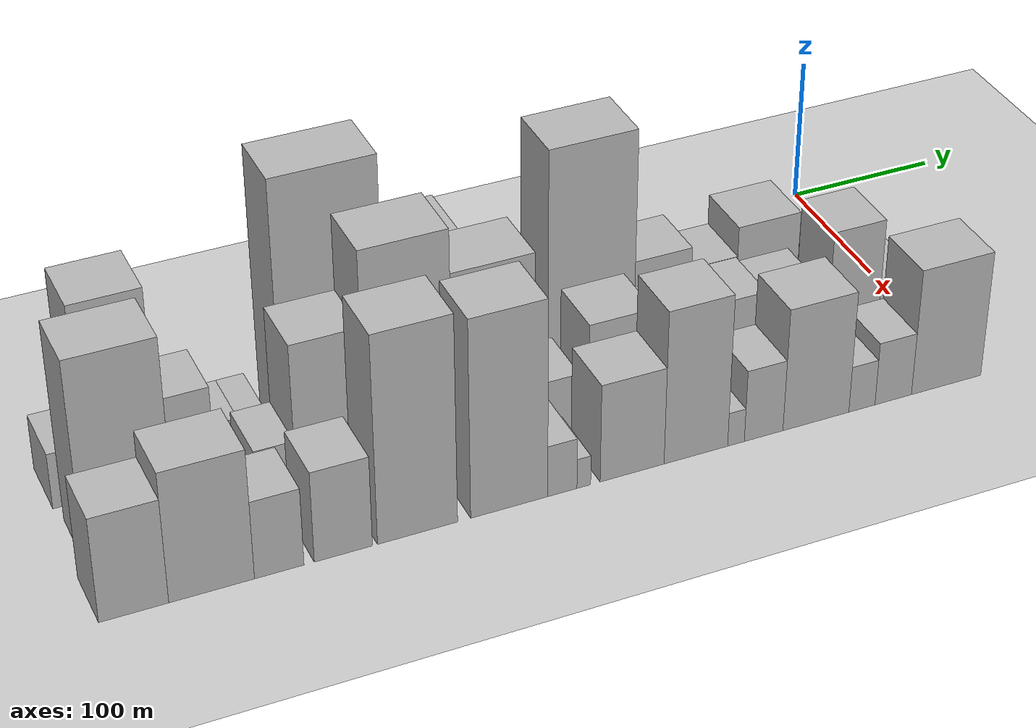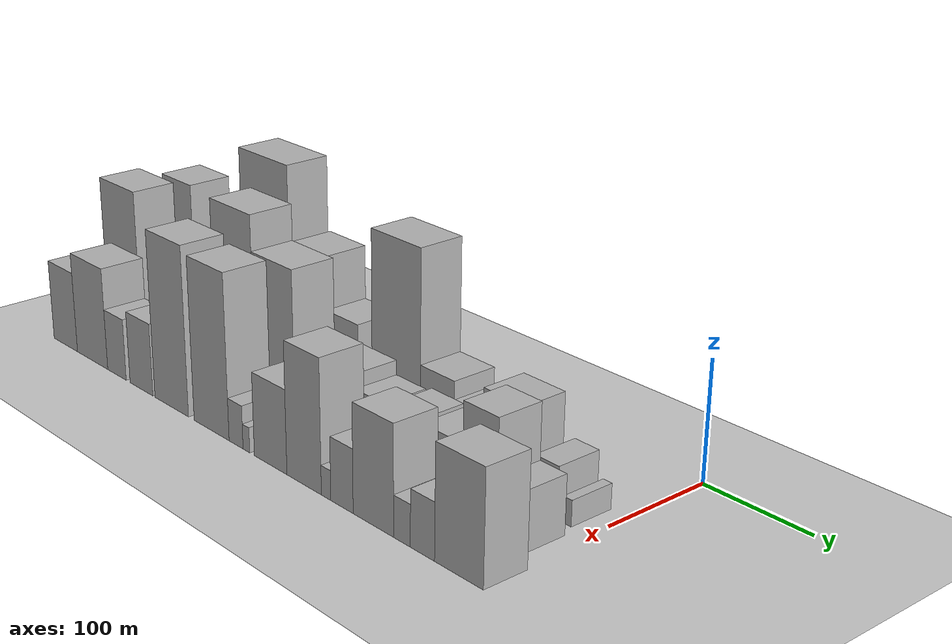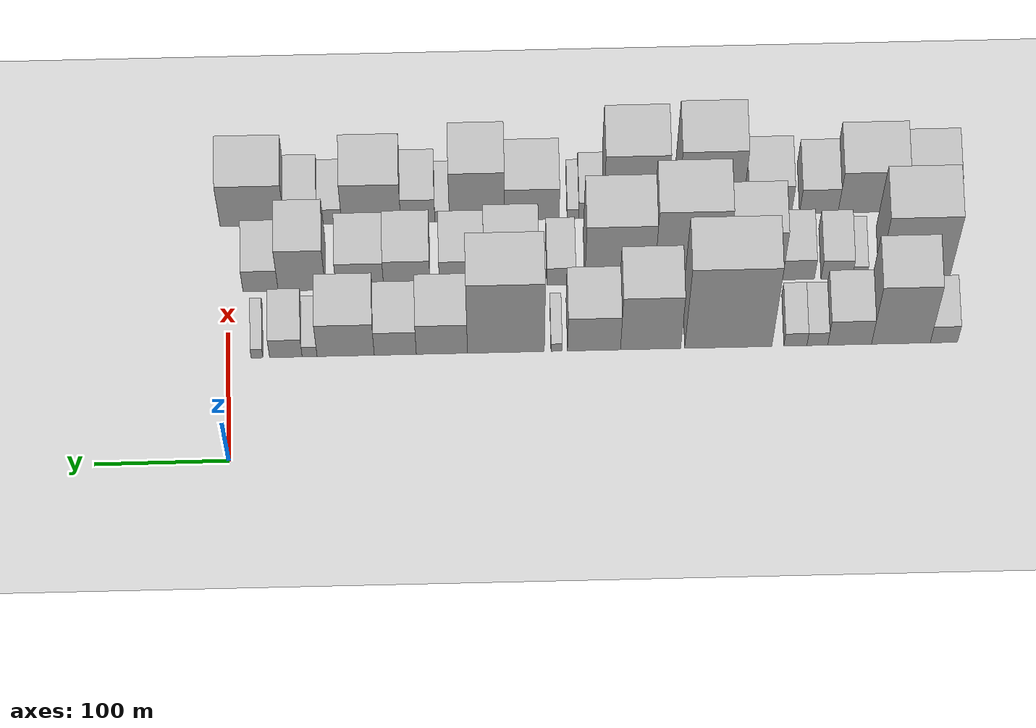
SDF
<sdf version="1.6">
 <world name="default">
  <include><name>ground_plane_1</name><uri>model://HANNAS_ground_plane</uri></include>
  <model name="building_1">
   <static>1</static>
   <pose>100.0000 -533.8357 0 0.000000 0.000000 0.000000</pose>
   <link name="link">
    <pose>0 0 19.50 0 0 0</pose>
    <collision name="collision"><geometry><box><size>40.0000 20.3287 39.0000</size></box></geometry></collision>
    <visual name="visual">
     <cast_shadows>0</cast_shadows>
     <geometry><box><size>40.0000 20.3287 39.0000</size></box></geometry>
     <material>
      <script>
       <uri>model://HANNAS_wall/materials/scripts</uri>
       <uri>model://HANNAS_wall/materials/textures</uri>
       <name>vrc/HANNAS_wall</name>
      </script>
     </material>
    </visual>
   </link>
  </model>
  <model name="building_2">
   <static>1</static>
   <pose>100.0000 -501.7357 0 0.000000 0.000000 0.000000</pose>
   <link name="link">
    <pose>0 0 67.50 0 0 0</pose>
    <collision name="collision"><geometry><box><size>40.0000 43.8712 135.0000</size></box></geometry></collision>
    <visual name="visual">
     <cast_shadows>0</cast_shadows>
     <geometry><box><size>40.0000 43.8712 135.0000</size></box></geometry>
     <material>
      <script>
       <uri>model://HANNAS_wall/materials/scripts</uri>
       <uri>model://HANNAS_wall/materials/textures</uri>
       <name>vrc/HANNAS_wall</name>
      </script>
     </material>
    </visual>
   </link>
  </model>
  <model name="building_3">
   <static>1</static>
   <pose>100.0000 -463.4330 0 0.000000 0.000000 0.000000</pose>
   <link name="link">
    <pose>0 0 28.50 0 0 0</pose>
    <collision name="collision"><geometry><box><size>40.0000 32.7341 57.0000</size></box></geometry></collision>
    <visual name="visual">
     <cast_shadows>0</cast_shadows>
     <geometry><box><size>40.0000 32.7341 57.0000</size></box></geometry>
     <material>
      <script>
       <uri>model://HANNAS_wall/materials/scripts</uri>
       <uri>model://HANNAS_wall/materials/textures</uri>
       <name>vrc/HANNAS_wall</name>
      </script>
     </material>
    </visual>
   </link>
  </model>
  <model name="building_4">
   <static>1</static>
   <pose>100.0000 -439.2820 0 0.000000 0.000000 0.000000</pose>
   <link name="link">
    <pose>0 0 15.00 0 0 0</pose>
    <collision name="collision"><geometry><box><size>40.0000 15.5680 30.0000</size></box></geometry></collision>
    <visual name="visual">
     <cast_shadows>0</cast_shadows>
     <geometry><box><size>40.0000 15.5680 30.0000</size></box></geometry>
     <material>
      <script>
       <uri>model://HANNAS_wall/materials/scripts</uri>
       <uri>model://HANNAS_wall/materials/textures</uri>
       <name>vrc/HANNAS_wall</name>
      </script>
     </material>
    </visual>
   </link>
  </model>
  <model name="building_5">
   <static>1</static>
   <pose>100.0000 -422.9092 0 0.000000 0.000000 0.000000</pose>
   <link name="link">
    <pose>0 0 15.00 0 0 0</pose>
    <collision name="collision"><geometry><box><size>40.0000 17.1775 30.0000</size></box></geometry></collision>
    <visual name="visual">
     <cast_shadows>0</cast_shadows>
     <geometry><box><size>40.0000 17.1775 30.0000</size></box></geometry>
     <material>
      <script>
       <uri>model://HANNAS_wall/materials/scripts</uri>
       <uri>model://HANNAS_wall/materials/textures</uri>
       <name>vrc/HANNAS_wall</name>
      </script>
     </material>
    </visual>
   </link>
  </model>
  <model name="building_6">
   <static>1</static>
   <pose>100.0000 -372.7456 0 0.000000 0.000000 0.000000</pose>
   <link name="link">
    <pose>0 0 93.00 0 0 0</pose>
    <collision name="collision"><geometry><box><size>40.0000 65.1498 186.0000</size></box></geometry></collision>
    <visual name="visual">
     <cast_shadows>0</cast_shadows>
     <geometry><box><size>40.0000 65.1498 186.0000</size></box></geometry>
     <material>
      <script>
       <uri>model://HANNAS_wall/materials/scripts</uri>
       <uri>model://HANNAS_wall/materials/textures</uri>
       <name>vrc/HANNAS_wall</name>
      </script>
     </material>
    </visual>
   </link>
  </model>
  <model name="building_7">
   <static>1</static>
   <pose>100.0000 -314.7158 0 0.000000 0.000000 0.000000</pose>
   <link name="link">
    <pose>0 0 61.50 0 0 0</pose>
    <collision name="collision"><geometry><box><size>40.0000 44.9099 123.0000</size></box></geometry></collision>
    <visual name="visual">
     <cast_shadows>0</cast_shadows>
     <geometry><box><size>40.0000 44.9099 123.0000</size></box></geometry>
     <material>
      <script>
       <uri>model://HANNAS_wall/materials/scripts</uri>
       <uri>model://HANNAS_wall/materials/textures</uri>
       <name>vrc/HANNAS_wall</name>
      </script>
     </material>
    </visual>
   </link>
  </model>
  <model name="building_8">
   <static>1</static>
   <pose>100.0000 -272.4738 0 0.000000 0.000000 0.000000</pose>
   <link name="link">
    <pose>0 0 39.00 0 0 0</pose>
    <collision name="collision"><geometry><box><size>40.0000 39.5740 78.0000</size></box></geometry></collision>
    <visual name="visual">
     <cast_shadows>0</cast_shadows>
     <geometry><box><size>40.0000 39.5740 78.0000</size></box></geometry>
     <material>
      <script>
       <uri>model://HANNAS_wall/materials/scripts</uri>
       <uri>model://HANNAS_wall/materials/textures</uri>
       <name>vrc/HANNAS_wall</name>
      </script>
     </material>
    </visual>
   </link>
  </model>
  <model name="building_9">
   <static>1</static>
   <pose>100.0000 -244.5368 0 0.000000 0.000000 0.000000</pose>
   <link name="link">
    <pose>0 0 9.00 0 0 0</pose>
    <collision name="collision"><geometry><box><size>40.0000 8.2999 18.0000</size></box></geometry></collision>
    <visual name="visual">
     <cast_shadows>0</cast_shadows>
     <geometry><box><size>40.0000 8.2999 18.0000</size></box></geometry>
     <material>
      <script>
       <uri>model://HANNAS_wall/materials/scripts</uri>
       <uri>model://HANNAS_wall/materials/textures</uri>
       <name>vrc/HANNAS_wall</name>
      </script>
     </material>
    </visual>
   </link>
  </model>
  <model name="building_10">
   <static>1</static>
   <pose>100.0000 -206.7228 0 0.000000 0.000000 0.000000</pose>
   <link name="link">
    <pose>0 0 81.00 0 0 0</pose>
    <collision name="collision"><geometry><box><size>40.0000 57.3281 162.0000</size></box></geometry></collision>
    <visual name="visual">
     <cast_shadows>0</cast_shadows>
     <geometry><box><size>40.0000 57.3281 162.0000</size></box></geometry>
     <material>
      <script>
       <uri>model://HANNAS_wall/materials/scripts</uri>
       <uri>model://HANNAS_wall/materials/textures</uri>
       <name>vrc/HANNAS_wall</name>
      </script>
     </material>
    </visual>
   </link>
  </model>
  <model name="building_11">
   <static>1</static>
   <pose>100.0000 -158.9652 0 0.000000 0.000000 0.000000</pose>
   <link name="link">
    <pose>0 0 34.50 0 0 0</pose>
    <collision name="collision"><geometry><box><size>40.0000 38.1870 69.0000</size></box></geometry></collision>
    <visual name="visual">
     <cast_shadows>0</cast_shadows>
     <geometry><box><size>40.0000 38.1870 69.0000</size></box></geometry>
     <material>
      <script>
       <uri>model://HANNAS_wall/materials/scripts</uri>
       <uri>model://HANNAS_wall/materials/textures</uri>
       <name>vrc/HANNAS_wall</name>
      </script>
     </material>
    </visual>
   </link>
  </model>
  <model name="building_12">
   <static>1</static>
   <pose>100.0000 -124.1919 0 0.000000 0.000000 0.000000</pose>
   <link name="link">
    <pose>0 0 27.00 0 0 0</pose>
    <collision name="collision"><geometry><box><size>40.0000 31.3597 54.0000</size></box></geometry></collision>
    <visual name="visual">
     <cast_shadows>0</cast_shadows>
     <geometry><box><size>40.0000 31.3597 54.0000</size></box></geometry>
     <material>
      <script>
       <uri>model://HANNAS_wall/materials/scripts</uri>
       <uri>model://HANNAS_wall/materials/textures</uri>
       <name>vrc/HANNAS_wall</name>
      </script>
     </material>
    </visual>
   </link>
  </model>
  <model name="building_13">
   <static>1</static>
   <pose>100.0000 -87.1841 0 0.000000 0.000000 0.000000</pose>
   <link name="link">
    <pose>0 0 37.50 0 0 0</pose>
    <collision name="collision"><geometry><box><size>40.0000 42.6557 75.0000</size></box></geometry></collision>
    <visual name="visual">
     <cast_shadows>0</cast_shadows>
     <geometry><box><size>40.0000 42.6557 75.0000</size></box></geometry>
     <material>
      <script>
       <uri>model://HANNAS_wall/materials/scripts</uri>
       <uri>model://HANNAS_wall/materials/textures</uri>
       <name>vrc/HANNAS_wall</name>
      </script>
     </material>
    </visual>
   </link>
  </model>
  <model name="building_14">
   <static>1</static>
   <pose>100.0000 -60.2784 0 0.000000 0.000000 0.000000</pose>
   <link name="link">
    <pose>0 0 12.00 0 0 0</pose>
    <collision name="collision"><geometry><box><size>40.0000 11.1557 24.0000</size></box></geometry></collision>
    <visual name="visual">
     <cast_shadows>0</cast_shadows>
     <geometry><box><size>40.0000 11.1557 24.0000</size></box></geometry>
     <material>
      <script>
       <uri>model://HANNAS_wall/materials/scripts</uri>
       <uri>model://HANNAS_wall/materials/textures</uri>
       <name>vrc/HANNAS_wall</name>
      </script>
     </material>
    </visual>
   </link>
  </model>
  <model name="building_15">
   <static>1</static>
   <pose>100.0000 -42.5767 0 0.000000 0.000000 0.000000</pose>
   <link name="link">
    <pose>0 0 21.00 0 0 0</pose>
    <collision name="collision"><geometry><box><size>40.0000 24.2479 42.0000</size></box></geometry></collision>
    <visual name="visual">
     <cast_shadows>0</cast_shadows>
     <geometry><box><size>40.0000 24.2479 42.0000</size></box></geometry>
     <material>
      <script>
       <uri>model://HANNAS_wall/materials/scripts</uri>
       <uri>model://HANNAS_wall/materials/textures</uri>
       <name>vrc/HANNAS_wall</name>
      </script>
     </material>
    </visual>
   </link>
  </model>
  <model name="building_16">
   <static>1</static>
   <pose>100.0000 -21.1023 0 0.000000 0.000000 0.000000</pose>
   <link name="link">
    <pose>0 0 10.50 0 0 0</pose>
    <collision name="collision"><geometry><box><size>40.0000 8.7009 21.0000</size></box></geometry></collision>
    <visual name="visual">
     <cast_shadows>0</cast_shadows>
     <geometry><box><size>40.0000 8.7009 21.0000</size></box></geometry>
     <material>
      <script>
       <uri>model://HANNAS_wall/materials/scripts</uri>
       <uri>model://HANNAS_wall/materials/textures</uri>
       <name>vrc/HANNAS_wall</name>
      </script>
     </material>
    </visual>
   </link>
  </model>
  <model name="building_32">
   <static>1</static>
   <pose>152.0000 -514.2317 0 0.000000 0.000000 0.000000</pose>
   <link name="link">
    <pose>0 0 69.00 0 0 0</pose>
    <collision name="collision"><geometry><box><size>40.0000 53.5365 138.0000</size></box></geometry></collision>
    <visual name="visual">
     <cast_shadows>0</cast_shadows>
     <geometry><box><size>40.0000 53.5365 138.0000</size></box></geometry>
     <material>
      <script>
       <uri>model://HANNAS_wall/materials/scripts</uri>
       <uri>model://HANNAS_wall/materials/textures</uri>
       <name>vrc/HANNAS_wall</name>
      </script>
     </material>
    </visual>
   </link>
  </model>
  <model name="building_33">
   <static>1</static>
   <pose>152.0000 -473.0222 0 0.000000 0.000000 0.000000</pose>
   <link name="link">
    <pose>0 0 13.50 0 0 0</pose>
    <collision name="collision"><geometry><box><size>40.0000 10.8826 27.0000</size></box></geometry></collision>
    <visual name="visual">
     <cast_shadows>0</cast_shadows>
     <geometry><box><size>40.0000 10.8826 27.0000</size></box></geometry>
     <material>
      <script>
       <uri>model://HANNAS_wall/materials/scripts</uri>
       <uri>model://HANNAS_wall/materials/textures</uri>
       <name>vrc/HANNAS_wall</name>
      </script>
     </material>
    </visual>
   </link>
  </model>
  <model name="building_34">
   <static>1</static>
   <pose>152.0000 -455.8984 0 0.000000 0.000000 0.000000</pose>
   <link name="link">
    <pose>0 0 21.00 0 0 0</pose>
    <collision name="collision"><geometry><box><size>40.0000 23.3649 42.0000</size></box></geometry></collision>
    <visual name="visual">
     <cast_shadows>0</cast_shadows>
     <geometry><box><size>40.0000 23.3649 42.0000</size></box></geometry>
     <material>
      <script>
       <uri>model://HANNAS_wall/materials/scripts</uri>
       <uri>model://HANNAS_wall/materials/textures</uri>
       <name>vrc/HANNAS_wall</name>
      </script>
     </material>
    </visual>
   </link>
  </model>
  <model name="building_35">
   <static>1</static>
   <pose>152.0000 -427.2207 0 0.000000 0.000000 0.000000</pose>
   <link name="link">
    <pose>0 0 22.50 0 0 0</pose>
    <collision name="collision"><geometry><box><size>40.0000 23.9904 45.0000</size></box></geometry></collision>
    <visual name="visual">
     <cast_shadows>0</cast_shadows>
     <geometry><box><size>40.0000 23.9904 45.0000</size></box></geometry>
     <material>
      <script>
       <uri>model://HANNAS_wall/materials/scripts</uri>
       <uri>model://HANNAS_wall/materials/textures</uri>
       <name>vrc/HANNAS_wall</name>
      </script>
     </material>
    </visual>
   </link>
  </model>
  <model name="building_36">
   <static>1</static>
   <pose>152.0000 -394.1154 0 0.000000 0.000000 0.000000</pose>
   <link name="link">
    <pose>0 0 55.50 0 0 0</pose>
    <collision name="collision"><geometry><box><size>40.0000 42.2202 111.0000</size></box></geometry></collision>
    <visual name="visual">
     <cast_shadows>0</cast_shadows>
     <geometry><box><size>40.0000 42.2202 111.0000</size></box></geometry>
     <material>
      <script>
       <uri>model://HANNAS_wall/materials/scripts</uri>
       <uri>model://HANNAS_wall/materials/textures</uri>
       <name>vrc/HANNAS_wall</name>
      </script>
     </material>
    </visual>
   </link>
  </model>
  <model name="building_37">
   <static>1</static>
   <pose>152.0000 -346.0021 0 0.000000 0.000000 0.000000</pose>
   <link name="link">
    <pose>0 0 81.00 0 0 0</pose>
    <collision name="collision"><geometry><box><size>40.0000 54.0065 162.0000</size></box></geometry></collision>
    <visual name="visual">
     <cast_shadows>0</cast_shadows>
     <geometry><box><size>40.0000 54.0065 162.0000</size></box></geometry>
     <material>
      <script>
       <uri>model://HANNAS_wall/materials/scripts</uri>
       <uri>model://HANNAS_wall/materials/textures</uri>
       <name>vrc/HANNAS_wall</name>
      </script>
     </material>
    </visual>
   </link>
  </model>
  <model name="building_38">
   <static>1</static>
   <pose>152.0000 -292.9950 0 0.000000 0.000000 0.000000</pose>
   <link name="link">
    <pose>0 0 66.00 0 0 0</pose>
    <collision name="collision"><geometry><box><size>40.0000 52.0078 132.0000</size></box></geometry></collision>
    <visual name="visual">
     <cast_shadows>0</cast_shadows>
     <geometry><box><size>40.0000 52.0078 132.0000</size></box></geometry>
     <material>
      <script>
       <uri>model://HANNAS_wall/materials/scripts</uri>
       <uri>model://HANNAS_wall/materials/textures</uri>
       <name>vrc/HANNAS_wall</name>
      </script>
     </material>
    </visual>
   </link>
  </model>
  <model name="building_39">
   <static>1</static>
   <pose>152.0000 -249.2636 0 0.000000 0.000000 0.000000</pose>
   <link name="link">
    <pose>0 0 19.50 0 0 0</pose>
    <collision name="collision"><geometry><box><size>40.0000 21.4550 39.0000</size></box></geometry></collision>
    <visual name="visual">
     <cast_shadows>0</cast_shadows>
     <geometry><box><size>40.0000 21.4550 39.0000</size></box></geometry>
     <material>
      <script>
       <uri>model://HANNAS_wall/materials/scripts</uri>
       <uri>model://HANNAS_wall/materials/textures</uri>
       <name>vrc/HANNAS_wall</name>
      </script>
     </material>
    </visual>
   </link>
  </model>
  <model name="building_40">
   <static>1</static>
   <pose>152.0000 -212.0736 0 0.000000 0.000000 0.000000</pose>
   <link name="link">
    <pose>0 0 36.00 0 0 0</pose>
    <collision name="collision"><geometry><box><size>40.0000 40.9250 72.0000</size></box></geometry></collision>
    <visual name="visual">
     <cast_shadows>0</cast_shadows>
     <geometry><box><size>40.0000 40.9250 72.0000</size></box></geometry>
     <material>
      <script>
       <uri>model://HANNAS_wall/materials/scripts</uri>
       <uri>model://HANNAS_wall/materials/textures</uri>
       <name>vrc/HANNAS_wall</name>
      </script>
     </material>
    </visual>
   </link>
  </model>
  <model name="building_41">
   <static>1</static>
   <pose>152.0000 -174.9117 0 0.000000 0.000000 0.000000</pose>
   <link name="link">
    <pose>0 0 30.00 0 0 0</pose>
    <collision name="collision"><geometry><box><size>40.0000 33.3990 60.0000</size></box></geometry></collision>
    <visual name="visual">
     <cast_shadows>0</cast_shadows>
     <geometry><box><size>40.0000 33.3990 60.0000</size></box></geometry>
     <material>
      <script>
       <uri>model://HANNAS_wall/materials/scripts</uri>
       <uri>model://HANNAS_wall/materials/textures</uri>
       <name>vrc/HANNAS_wall</name>
      </script>
     </material>
    </visual>
   </link>
  </model>
  <model name="building_42">
   <static>1</static>
   <pose>152.0000 -133.7987 0 0.000000 0.000000 0.000000</pose>
   <link name="link">
    <pose>0 0 31.50 0 0 0</pose>
    <collision name="collision"><geometry><box><size>40.0000 34.8270 63.0000</size></box></geometry></collision>
    <visual name="visual">
     <cast_shadows>0</cast_shadows>
     <geometry><box><size>40.0000 34.8270 63.0000</size></box></geometry>
     <material>
      <script>
       <uri>model://HANNAS_wall/materials/scripts</uri>
       <uri>model://HANNAS_wall/materials/textures</uri>
       <name>vrc/HANNAS_wall</name>
      </script>
     </material>
    </visual>
   </link>
  </model>
  <model name="building_43">
   <static>1</static>
   <pose>152.0000 -98.5936 0 0.000000 0.000000 0.000000</pose>
   <link name="link">
    <pose>0 0 30.00 0 0 0</pose>
    <collision name="collision"><geometry><box><size>40.0000 35.5831 60.0000</size></box></geometry></collision>
    <visual name="visual">
     <cast_shadows>0</cast_shadows>
     <geometry><box><size>40.0000 35.5831 60.0000</size></box></geometry>
     <material>
      <script>
       <uri>model://HANNAS_wall/materials/scripts</uri>
       <uri>model://HANNAS_wall/materials/textures</uri>
       <name>vrc/HANNAS_wall</name>
      </script>
     </material>
    </visual>
   </link>
  </model>
  <model name="building_44">
   <static>1</static>
   <pose>152.0000 -55.0811 0 0.000000 0.000000 0.000000</pose>
   <link name="link">
    <pose>0 0 46.50 0 0 0</pose>
    <collision name="collision"><geometry><box><size>40.0000 35.4419 93.0000</size></box></geometry></collision>
    <visual name="visual">
     <cast_shadows>0</cast_shadows>
     <geometry><box><size>40.0000 35.4419 93.0000</size></box></geometry>
     <material>
      <script>
       <uri>model://HANNAS_wall/materials/scripts</uri>
       <uri>model://HANNAS_wall/materials/textures</uri>
       <name>vrc/HANNAS_wall</name>
      </script>
     </material>
    </visual>
   </link>
  </model>
  <model name="building_45">
   <static>1</static>
   <pose>152.0000 -24.2012 0 0.000000 0.000000 0.000000</pose>
   <link name="link">
    <pose>0 0 24.00 0 0 0</pose>
    <collision name="collision"><geometry><box><size>40.0000 26.3179 48.0000</size></box></geometry></collision>
    <visual name="visual">
     <cast_shadows>0</cast_shadows>
     <geometry><box><size>40.0000 26.3179 48.0000</size></box></geometry>
     <material>
      <script>
       <uri>model://HANNAS_wall/materials/scripts</uri>
       <uri>model://HANNAS_wall/materials/textures</uri>
       <name>vrc/HANNAS_wall</name>
      </script>
     </material>
    </visual>
   </link>
  </model>
  <model name="building_62">
   <static>1</static>
   <pose>204.0000 -528.2205 0 0.000000 0.000000 0.000000</pose>
   <link name="link">
    <pose>0 0 36.00 0 0 0</pose>
    <collision name="collision"><geometry><box><size>40.0000 39.5590 72.0000</size></box></geometry></collision>
    <visual name="visual">
     <cast_shadows>0</cast_shadows>
     <geometry><box><size>40.0000 39.5590 72.0000</size></box></geometry>
     <material>
      <script>
       <uri>model://HANNAS_wall/materials/scripts</uri>
       <uri>model://HANNAS_wall/materials/textures</uri>
       <name>vrc/HANNAS_wall</name>
      </script>
     </material>
    </visual>
   </link>
  </model>
  <model name="building_63">
   <static>1</static>
   <pose>204.0000 -483.7912 0 0.000000 0.000000 0.000000</pose>
   <link name="link">
    <pose>0 0 45.00 0 0 0</pose>
    <collision name="collision"><geometry><box><size>40.0000 49.2997 90.0000</size></box></geometry></collision>
    <visual name="visual">
     <cast_shadows>0</cast_shadows>
     <geometry><box><size>40.0000 49.2997 90.0000</size></box></geometry>
     <material>
      <script>
       <uri>model://HANNAS_wall/materials/scripts</uri>
       <uri>model://HANNAS_wall/materials/textures</uri>
       <name>vrc/HANNAS_wall</name>
      </script>
     </material>
    </visual>
   </link>
  </model>
  <model name="building_64">
   <static>1</static>
   <pose>204.0000 -444.6662 0 0.000000 0.000000 0.000000</pose>
   <link name="link">
    <pose>0 0 27.00 0 0 0</pose>
    <collision name="collision"><geometry><box><size>40.0000 28.9502 54.0000</size></box></geometry></collision>
    <visual name="visual">
     <cast_shadows>0</cast_shadows>
     <geometry><box><size>40.0000 28.9502 54.0000</size></box></geometry>
     <material>
      <script>
       <uri>model://HANNAS_wall/materials/scripts</uri>
       <uri>model://HANNAS_wall/materials/textures</uri>
       <name>vrc/HANNAS_wall</name>
      </script>
     </material>
    </visual>
   </link>
  </model>
  <model name="building_65">
   <static>1</static>
   <pose>204.0000 -406.9002 0 0.000000 0.000000 0.000000</pose>
   <link name="link">
    <pose>0 0 31.50 0 0 0</pose>
    <collision name="collision"><geometry><box><size>40.0000 34.5819 63.0000</size></box></geometry></collision>
    <visual name="visual">
     <cast_shadows>0</cast_shadows>
     <geometry><box><size>40.0000 34.5819 63.0000</size></box></geometry>
     <material>
      <script>
       <uri>model://HANNAS_wall/materials/scripts</uri>
       <uri>model://HANNAS_wall/materials/textures</uri>
       <name>vrc/HANNAS_wall</name>
      </script>
     </material>
    </visual>
   </link>
  </model>
  <model name="building_66">
   <static>1</static>
   <pose>204.0000 -362.3307 0 0.000000 0.000000 0.000000</pose>
   <link name="link">
    <pose>0 0 72.00 0 0 0</pose>
    <collision name="collision"><geometry><box><size>40.0000 48.5571 144.0000</size></box></geometry></collision>
    <visual name="visual">
     <cast_shadows>0</cast_shadows>
     <geometry><box><size>40.0000 48.5571 144.0000</size></box></geometry>
     <material>
      <script>
       <uri>model://HANNAS_wall/materials/scripts</uri>
       <uri>model://HANNAS_wall/materials/textures</uri>
       <name>vrc/HANNAS_wall</name>
      </script>
     </material>
    </visual>
   </link>
  </model>
  <model name="building_67">
   <static>1</static>
   <pose>204.0000 -306.1538 0 0.000000 0.000000 0.000000</pose>
   <link name="link">
    <pose>0 0 69.00 0 0 0</pose>
    <collision name="collision"><geometry><box><size>40.0000 47.7966 138.0000</size></box></geometry></collision>
    <visual name="visual">
     <cast_shadows>0</cast_shadows>
     <geometry><box><size>40.0000 47.7966 138.0000</size></box></geometry>
     <material>
      <script>
       <uri>model://HANNAS_wall/materials/scripts</uri>
       <uri>model://HANNAS_wall/materials/textures</uri>
       <name>vrc/HANNAS_wall</name>
      </script>
     </material>
    </visual>
   </link>
  </model>
  <model name="building_68">
   <static>1</static>
   <pose>204.0000 -273.0487 0 0.000000 0.000000 0.000000</pose>
   <link name="link">
    <pose>0 0 18.00 0 0 0</pose>
    <collision name="collision"><geometry><box><size>40.0000 18.4138 36.0000</size></box></geometry></collision>
    <visual name="visual">
     <cast_shadows>0</cast_shadows>
     <geometry><box><size>40.0000 18.4138 36.0000</size></box></geometry>
     <material>
      <script>
       <uri>model://HANNAS_wall/materials/scripts</uri>
       <uri>model://HANNAS_wall/materials/textures</uri>
       <name>vrc/HANNAS_wall</name>
      </script>
     </material>
    </visual>
   </link>
  </model>
  <model name="building_69">
   <static>1</static>
   <pose>204.0000 -259.4952 0 0.000000 0.000000 0.000000</pose>
   <link name="link">
    <pose>0 0 10.50 0 0 0</pose>
    <collision name="collision"><geometry><box><size>40.0000 8.6932 21.0000</size></box></geometry></collision>
    <visual name="visual">
     <cast_shadows>0</cast_shadows>
     <geometry><box><size>40.0000 8.6932 21.0000</size></box></geometry>
     <material>
      <script>
       <uri>model://HANNAS_wall/materials/scripts</uri>
       <uri>model://HANNAS_wall/materials/textures</uri>
       <name>vrc/HANNAS_wall</name>
      </script>
     </material>
    </visual>
   </link>
  </model>
  <model name="building_70">
   <static>1</static>
   <pose>204.0000 -228.6432 0 0.000000 0.000000 0.000000</pose>
   <link name="link">
    <pose>0 0 34.50 0 0 0</pose>
    <collision name="collision"><geometry><box><size>40.0000 41.0106 69.0000</size></box></geometry></collision>
    <visual name="visual">
     <cast_shadows>0</cast_shadows>
     <geometry><box><size>40.0000 41.0106 69.0000</size></box></geometry>
     <material>
      <script>
       <uri>model://HANNAS_wall/materials/scripts</uri>
       <uri>model://HANNAS_wall/materials/textures</uri>
       <name>vrc/HANNAS_wall</name>
      </script>
     </material>
    </visual>
   </link>
  </model>
  <model name="building_71">
   <static>1</static>
   <pose>204.0000 -187.3996 0 0.000000 0.000000 0.000000</pose>
   <link name="link">
    <pose>0 0 54.00 0 0 0</pose>
    <collision name="collision"><geometry><box><size>40.0000 41.4765 108.0000</size></box></geometry></collision>
    <visual name="visual">
     <cast_shadows>0</cast_shadows>
     <geometry><box><size>40.0000 41.4765 108.0000</size></box></geometry>
     <material>
      <script>
       <uri>model://HANNAS_wall/materials/scripts</uri>
       <uri>model://HANNAS_wall/materials/textures</uri>
       <name>vrc/HANNAS_wall</name>
      </script>
     </material>
    </visual>
   </link>
  </model>
  <model name="building_72">
   <static>1</static>
   <pose>204.0000 -161.1612 0 0.000000 0.000000 0.000000</pose>
   <link name="link">
    <pose>0 0 12.00 0 0 0</pose>
    <collision name="collision"><geometry><box><size>40.0000 11.0003 24.0000</size></box></geometry></collision>
    <visual name="visual">
     <cast_shadows>0</cast_shadows>
     <geometry><box><size>40.0000 11.0003 24.0000</size></box></geometry>
     <material>
      <script>
       <uri>model://HANNAS_wall/materials/scripts</uri>
       <uri>model://HANNAS_wall/materials/textures</uri>
       <name>vrc/HANNAS_wall</name>
      </script>
     </material>
    </visual>
   </link>
  </model>
  <model name="building_73">
   <static>1</static>
   <pose>204.0000 -142.8271 0 0.000000 0.000000 0.000000</pose>
   <link name="link">
    <pose>0 0 25.50 0 0 0</pose>
    <collision name="collision"><geometry><box><size>40.0000 25.6680 51.0000</size></box></geometry></collision>
    <visual name="visual">
     <cast_shadows>0</cast_shadows>
     <geometry><box><size>40.0000 25.6680 51.0000</size></box></geometry>
     <material>
      <script>
       <uri>model://HANNAS_wall/materials/scripts</uri>
       <uri>model://HANNAS_wall/materials/textures</uri>
       <name>vrc/HANNAS_wall</name>
      </script>
     </material>
    </visual>
   </link>
  </model>
  <model name="building_74">
   <static>1</static>
   <pose>204.0000 -107.7701 0 0.000000 0.000000 0.000000</pose>
   <link name="link">
    <pose>0 0 43.50 0 0 0</pose>
    <collision name="collision"><geometry><box><size>40.0000 44.4458 87.0000</size></box></geometry></collision>
    <visual name="visual">
     <cast_shadows>0</cast_shadows>
     <geometry><box><size>40.0000 44.4458 87.0000</size></box></geometry>
     <material>
      <script>
       <uri>model://HANNAS_wall/materials/scripts</uri>
       <uri>model://HANNAS_wall/materials/textures</uri>
       <name>vrc/HANNAS_wall</name>
      </script>
     </material>
    </visual>
   </link>
  </model>
  <model name="building_75">
   <static>1</static>
   <pose>204.0000 -76.6233 0 0.000000 0.000000 0.000000</pose>
   <link name="link">
    <pose>0 0 16.50 0 0 0</pose>
    <collision name="collision"><geometry><box><size>40.0000 17.8479 33.0000</size></box></geometry></collision>
    <visual name="visual">
     <cast_shadows>0</cast_shadows>
     <geometry><box><size>40.0000 17.8479 33.0000</size></box></geometry>
     <material>
      <script>
       <uri>model://HANNAS_wall/materials/scripts</uri>
       <uri>model://HANNAS_wall/materials/textures</uri>
       <name>vrc/HANNAS_wall</name>
      </script>
     </material>
    </visual>
   </link>
  </model>
  <model name="building_76">
   <static>1</static>
   <pose>204.0000 -55.1509 0 0.000000 0.000000 0.000000</pose>
   <link name="link">
    <pose>0 0 22.50 0 0 0</pose>
    <collision name="collision"><geometry><box><size>40.0000 25.0968 45.0000</size></box></geometry></collision>
    <visual name="visual">
     <cast_shadows>0</cast_shadows>
     <geometry><box><size>40.0000 25.0968 45.0000</size></box></geometry>
     <material>
      <script>
       <uri>model://HANNAS_wall/materials/scripts</uri>
       <uri>model://HANNAS_wall/materials/textures</uri>
       <name>vrc/HANNAS_wall</name>
      </script>
     </material>
    </visual>
   </link>
  </model>
  <model name="building_77">
   <static>1</static>
   <pose>204.0000 -18.3816 0 0.000000 0.000000 0.000000</pose>
   <link name="link">
    <pose>0 0 45.00 0 0 0</pose>
    <collision name="collision"><geometry><box><size>40.0000 48.4417 90.0000</size></box></geometry></collision>
    <visual name="visual">
     <cast_shadows>0</cast_shadows>
     <geometry><box><size>40.0000 48.4417 90.0000</size></box></geometry>
     <material>
      <script>
       <uri>model://HANNAS_wall/materials/scripts</uri>
       <uri>model://HANNAS_wall/materials/textures</uri>
       <name>vrc/HANNAS_wall</name>
      </script>
     </material>
    </visual>
   </link>
  </model>
 </world>
</sdf>
